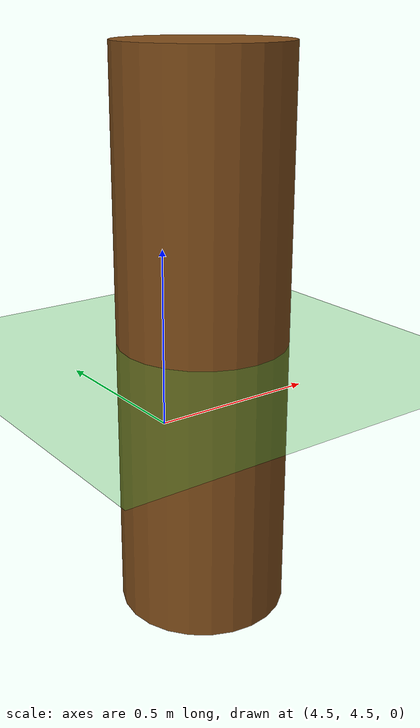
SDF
<?xml version="1.0"?>
<!-- Gazebo World Template: Backyard Lawn Environment -->
<sdf version="1.7">
  <world name="backyard">

    <!-- Physics -->
    <physics type="ode">
      <real_time_update_rate>1000.0</real_time_update_rate>
      <max_step_size>0.001</max_step_size>
      <real_time_factor>1</real_time_factor>
    </physics>

    <!-- Lighting -->
    <include>
      <uri>model://sun</uri>
    </include>

    <!-- Ground Plane with grass friction properties -->
    <model name="ground_plane">
      <static>true</static>
      <link name="link">
        <collision name="collision">
          <geometry>
            <plane>
              <normal>0 0 1</normal>
              <size>50 50</size>
            </plane>
          </geometry>
          <surface>
            <friction>
              <ode>
                <mu>0.5</mu>  <!-- Grass friction -->
                <mu2>0.5</mu2>
              </ode>
            </friction>
          </surface>
        </collision>
        <visual name="visual">
          <geometry>
            <plane>
              <normal>0 0 1</normal>
              <size>50 50</size>
            </plane>
          </geometry>
          <material>
            <ambient>0.2 0.6 0.2 1</ambient>  <!-- Grass green -->
            <diffuse>0.2 0.7 0.2 1</diffuse>
          </material>
        </visual>
      </link>
    </model>

    <!-- Example obstacle: tree -->
    <model name="tree_1">
      <static>true</static>
      <pose>5 5 0 0 0 0</pose>
      <link name="trunk">
        <collision name="collision">
          <geometry>
            <cylinder>
              <radius>0.3</radius>
              <length>2.0</length>
            </cylinder>
          </geometry>
        </collision>
        <visual name="visual">
          <geometry>
            <cylinder>
              <radius>0.3</radius>
              <length>2.0</length>
            </cylinder>
          </geometry>
          <material>
            <ambient>0.4 0.2 0.1 1</ambient>
            <diffuse>0.5 0.3 0.1 1</diffuse>
          </material>
        </visual>
      </link>
    </model>

    <!-- More obstacles to be added by Simulator agent -->

  </world>
</sdf>
